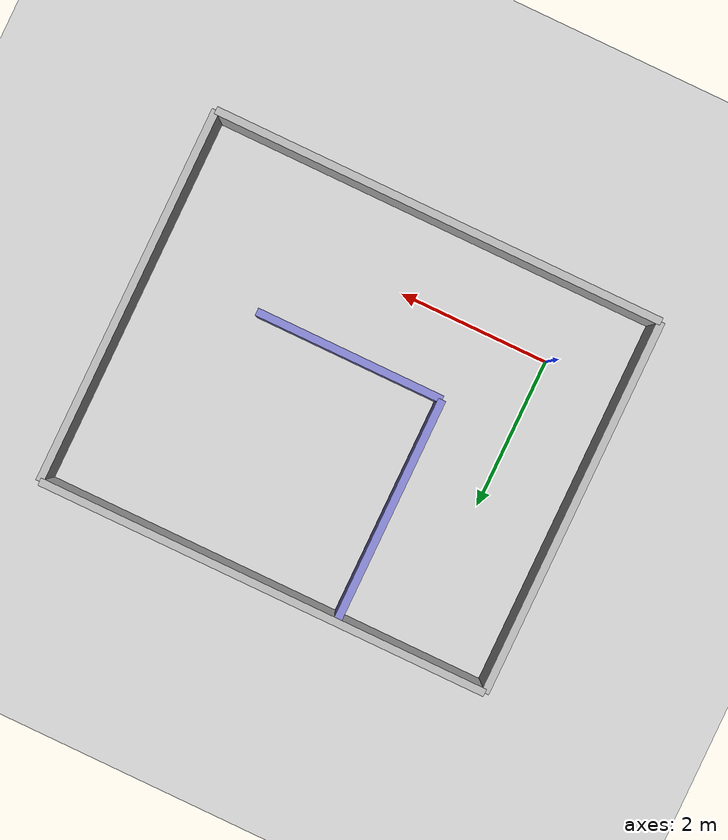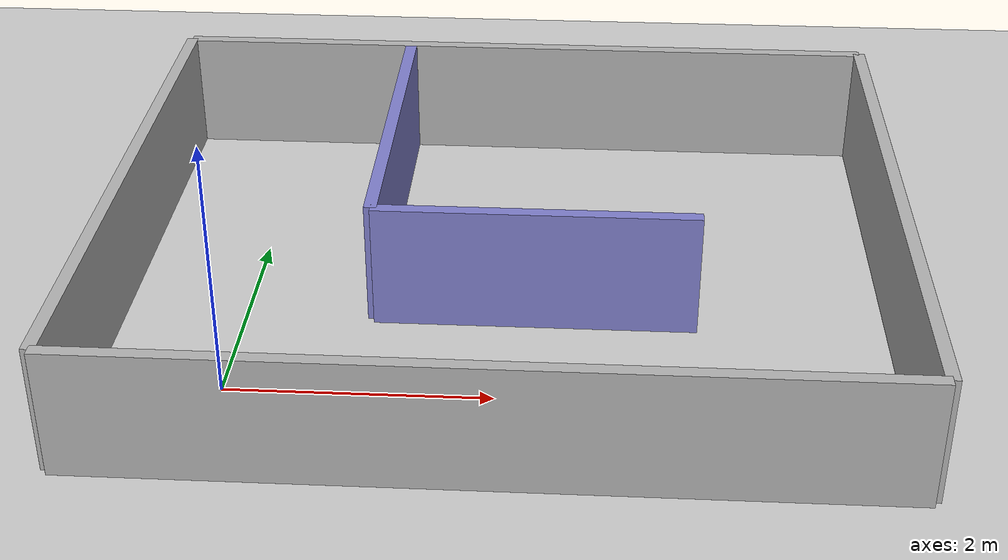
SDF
<?xml version="1.0" ?>
<sdf version="1.5">
  <world name="corridor">

    <!-- 조명 + 바닥 -->
    <include><uri>model://sun</uri></include>
    <include><uri>model://ground_plane</uri></include>

    <!-- ===== 외벽 (6m x 5m) ===== -->

    <!-- 하단 벽 (y=-1) -->
    <model name="wall_bottom">
      <static>true</static>
      <pose>2 -1 0.5 0 0 0</pose>
      <link name="link">
        <collision name="collision">
          <geometry><box><size>6 0.1 1</size></box></geometry>
        </collision>
        <visual name="visual">
          <geometry><box><size>6 0.1 1</size></box></geometry>
          <material><ambient>0.7 0.7 0.7 1</ambient></material>
        </visual>
      </link>
    </model>

    <!-- 상단 벽 (y=4) -->
    <model name="wall_top">
      <static>true</static>
      <pose>2 4 0.5 0 0 0</pose>
      <link name="link">
        <collision name="collision">
          <geometry><box><size>6 0.1 1</size></box></geometry>
        </collision>
        <visual name="visual">
          <geometry><box><size>6 0.1 1</size></box></geometry>
          <material><ambient>0.7 0.7 0.7 1</ambient></material>
        </visual>
      </link>
    </model>

    <!-- 좌측 벽 (x=-1) -->
    <model name="wall_left">
      <static>true</static>
      <pose>-1 1.5 0.5 0 0 0</pose>
      <link name="link">
        <collision name="collision">
          <geometry><box><size>0.1 5 1</size></box></geometry>
        </collision>
        <visual name="visual">
          <geometry><box><size>0.1 5 1</size></box></geometry>
          <material><ambient>0.7 0.7 0.7 1</ambient></material>
        </visual>
      </link>
    </model>

    <!-- 우측 벽 (x=5) -->
    <model name="wall_right">
      <static>true</static>
      <pose>5 1.5 0.5 0 0 0</pose>
      <link name="link">
        <collision name="collision">
          <geometry><box><size>0.1 5 1</size></box></geometry>
        </collision>
        <visual name="visual">
          <geometry><box><size>0.1 5 1</size></box></geometry>
          <material><ambient>0.7 0.7 0.7 1</ambient></material>
        </visual>
      </link>
    </model>

    <!-- ===== 내벽 (ㄱ자 복도 형성) ===== -->

    <!-- 내벽 세로 (x=1, y=1.5~3.5) -->
    <model name="inner_wall_vertical">
      <static>true</static>
      <pose>1 2.5 0.5 0 0 0</pose>
      <link name="link">
        <collision name="collision">
          <geometry><box><size>0.1 3 1</size></box></geometry>
        </collision>
        <visual name="visual">
          <geometry><box><size>0.1 3 1</size></box></geometry>
          <material><ambient>0.5 0.5 0.8 1</ambient></material>
        </visual>
      </link>
    </model>

    <!-- 내벽 가로 (x=1~3.5, y=1) -->
    <model name="inner_wall_horizontal">
      <static>true</static>
      <pose>2.25 1 0.5 0 0 0</pose>
      <link name="link">
        <collision name="collision">
          <geometry><box><size>2.5 0.1 1</size></box></geometry>
        </collision>
        <visual name="visual">
          <geometry><box><size>2.5 0.1 1</size></box></geometry>
          <material><ambient>0.5 0.5 0.8 1</ambient></material>
        </visual>
      </link>
    </model>

  </world>
</sdf>
